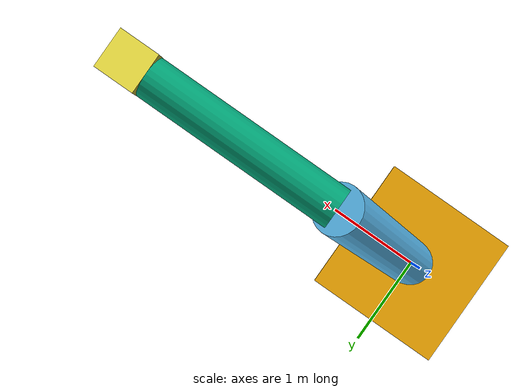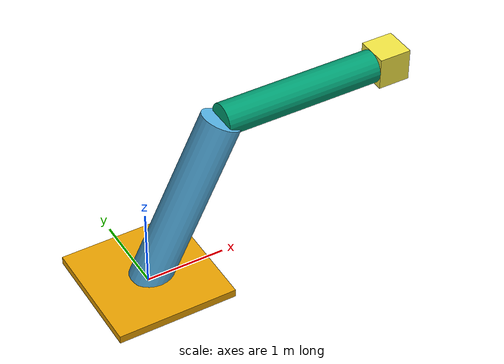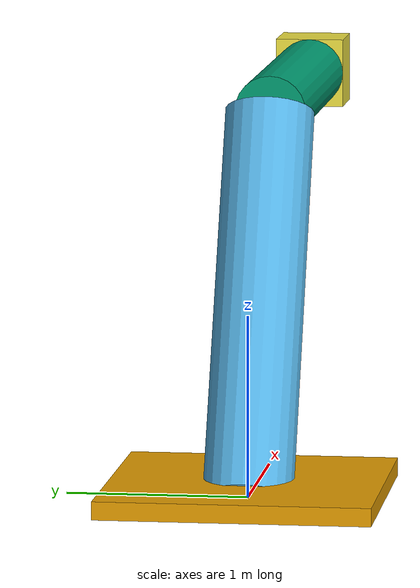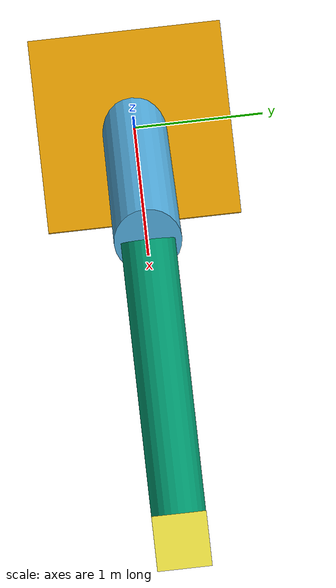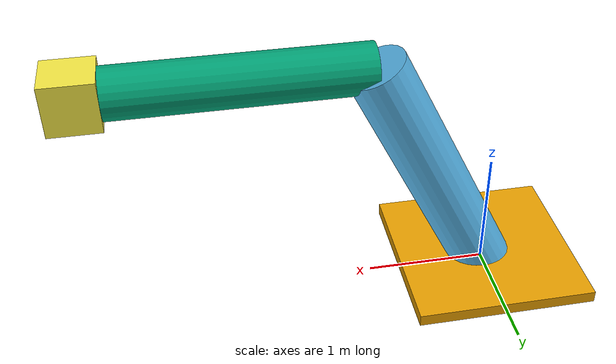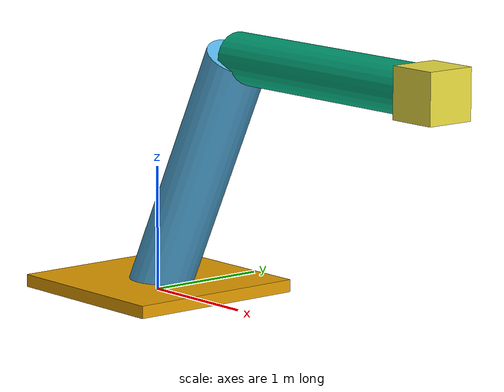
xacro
<?xml version="1.0"?>

<robot name="my_manipulator" xmlns:xacro="http://www.ros.org/wiki/xacro">
    <xacro:include filename="$(find manipulator)/urdf/templates.xacro" />
    <xacro:include filename="$(find manipulator)/urdf/base_and_limits.xacro" />
    <xacro:include filename="$(find manipulator)/urdf/dh_parameters.xacro"  />

    <my_link_box name="${l00}" origin_rpy="0 0 0" origin_xyz="0 0 ${base_height_half}" size="${base_size} ${base_height}" />
	<my_link_cylinder name="${l01}" origin_xyz="${a1/2} 0 ${d2/2}" origin_rpy="0 ${phi2} 0" radius="${R01}" length="${L2}"/>
	<my_link_cylinder name="${l02}" origin_xyz="${a2/2} 0 ${d3/2}" origin_rpy="0 ${phi3} 0" radius="${R02}" length="${L3}"/>
	<my_link_box name="${l03}" origin_xyz="${gripper_height_half} 0 0" origin_rpy="0 0 0" size="${gripper_size} ${gripper_height}"/>

<my_joint name="${l00}__${l01}" type="${type0}"
origin_rpy="${alpha0} 0 0" origin_xyz="${a0} 0 ${d1}"
parent = "${l00}" child = "${l01}"/>

<my_joint name="${l01}__${l02}" type="${type1}"
origin_rpy="${alpha1} 0 0" origin_xyz="${a1} 0 ${d2}"
parent = "${l01}" child = "${l02}"/>

<my_joint name="${l02}__${l03}" type="${type2}"
origin_rpy="${alpha2} 0 0" origin_xyz="${a2} 0 ${d3}"
parent = "${l02}" child = "${l03}"/>

</robot>

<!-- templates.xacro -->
<robot xmlns:xacro="http://www.ros.org/wiki/xacro">

	<xacro:macro name="my_link_box" params="name origin_xyz origin_rpy size">
		<link name="${name}">
			<visual>
				<origin xyz="${origin_xyz}" rpy="${origin_rpy}"/>
				<geometry>
					<box size="${size}"/>
				</geometry>
			</visual>
		</link>
	</xacro:macro>

	 <xacro:macro name="my_link_cylinder" params="name origin_xyz origin_rpy radius length">
    <link name="${name}">
    <visual>
        <origin rpy="${origin_rpy}" xyz="${origin_xyz}" />
        <geometry>
          <cylinder radius="${radius}" length="${length}" />
        </geometry>
      </visual>
    </link>
  </xacro:macro>

	<xacro:macro name="my_joint" params="name type origin_rpy origin_xyz parent child">
		<joint name="${name}" type="${type}">
			<axis xyz="0 0 1"/>
			<limit effort="${limit_effort}" lower="${limit_lower}" upper="${limit_upper}" velocity="${limit_velocity}"/>
			<origin xyz = "${origin_xyz}" rpy="${origin_rpy}"/>
			<parent link = "${parent}"/>
			<child link = "${child}"/>
		</joint>
	</xacro:macro>

	<xacro:macro name="gripper_joint" params="name type origin_rpy origin_xyz parent child">
		<joint name="${name}" type="${type}">
			<axis xyz="0 0 1"/>
			<limit effort="${limit_effort}" lower="${gripper_limit_lower}" upper="${gripper_limit_upper}" velocity="${limit_velocity}"/>
			<origin xyz = "${origin_xyz}" rpy="${origin_rpy}"/>
			<parent link = "${parent}"/>
			<child link = "${child}"/>
		</joint>
	</xacro:macro>
</robot>

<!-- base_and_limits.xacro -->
<robot name="my_manipulator" xmlns:xacro="http://www.ros.org/wiki/xacro">

    <xacro:property name="limit_effort"     value="1000.0"  />
    <xacro:property name="limit_lower"      value="${-pi}"  />
    <xacro:property name="limit_upper"      value="${pi}"   />
    <xacro:property name="limit_velocity"   value="0.5"     />

    <xacro:property name="base_size"        value="1.5 1.5" />
    <xacro:property name="base_height"      value="0.1"     />
    <xacro:property name="base_height_half" value="${base_height/2.0}" />

    <xacro:property name="gripper_size"        value="0.4 0.4" />
    <xacro:property name="gripper_height"      value="0.4"     />
    <xacro:property name="gripper_height_half" value="${gripper_height/2.0}" />
    <xacro:property name="gripper_limit_lower"      value="-0.4"  />
    <xacro:property name="gripper_limit_upper"      value="0.4"   />

    <xacro:property name="l00"          value="base_link"           />
	<xacro:property name="l01"          value="link_01"             />
	<xacro:property name="l02"          value="link_02"             />
	<xacro:property name="l03"          value="link_03"             />

	<xacro:property name="R01"          value="0.25"             />
	<xacro:property name="R02"          value="0.2"             />
	<xacro:property name="R03"          value="0.15"             />
</robot>

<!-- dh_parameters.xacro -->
<robot xmlns:xacro="http://www.ros.org/wiki/xacro">
	<xacro:property name="a0"    	value="0"	/>
	<xacro:property name="alpha0"	value="${0}"	/>
	<xacro:property name="d1"    	value="0"	/>
	<xacro:property name="L1"    	value="0.0"	/>
	<xacro:property name="phi1"    	value="0.0"	/>
	<xacro:property name="type0"    	value="revolute"	/>

	<xacro:property name="a1"    	value="1"	/>
	<xacro:property name="alpha1"	value="${0}"	/>
	<xacro:property name="d2"    	value="2"	/>
	<xacro:property name="L2"    	value="2.2360679775"	/>
	<xacro:property name="phi2"    	value="0.463647609001"	/>
	<xacro:property name="type1"    	value="revolute"	/>

	<xacro:property name="a2"    	value="2"	/>
	<xacro:property name="alpha2"	value="${3.14}"	/>
	<xacro:property name="d3"    	value="0"	/>
	<xacro:property name="L3"    	value="2.0"	/>
	<xacro:property name="phi3"    	value="1.57079632679"	/>
	<xacro:property name="type2"    	value="prismatic"	/>

</robot>
